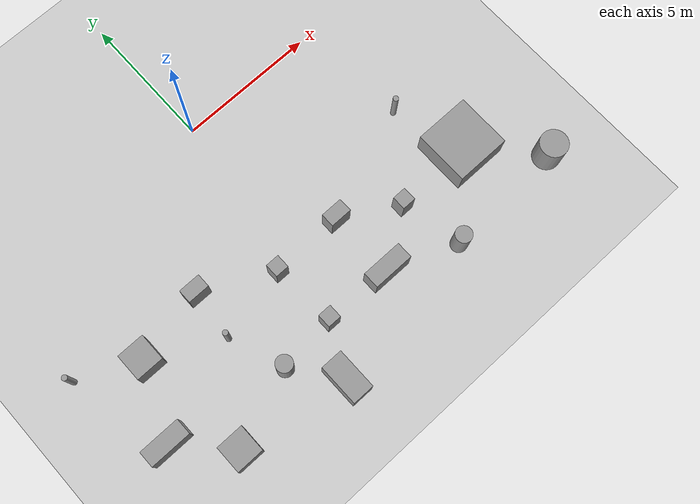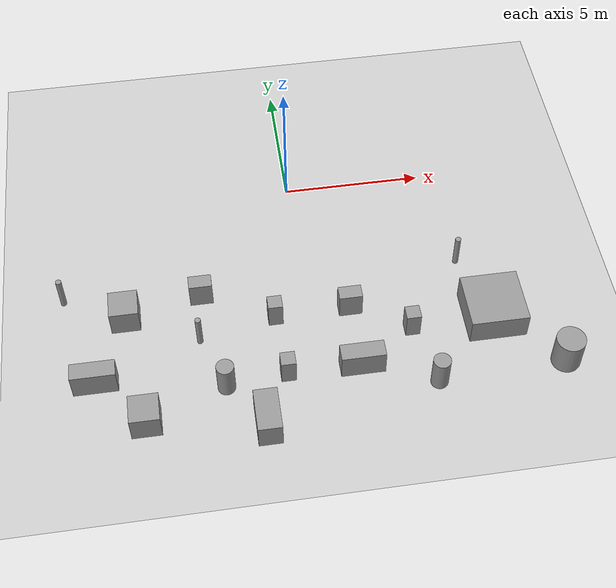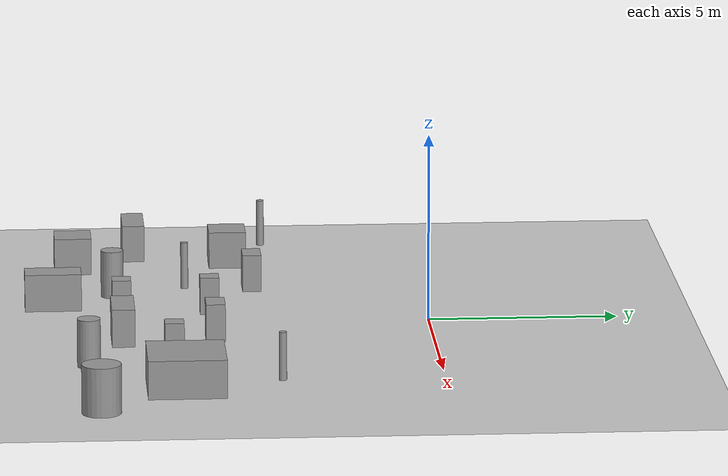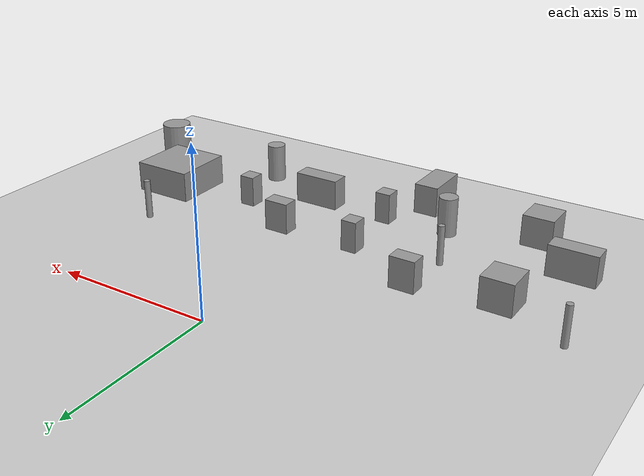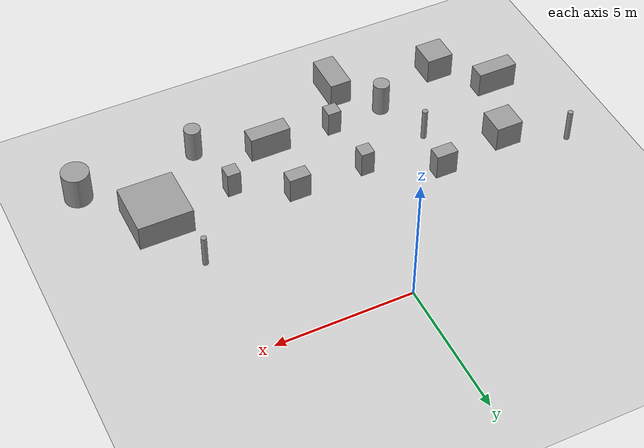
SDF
<sdf version="1.7">
 <world name="default">
  <model name="ground_plane">
   <static>1</static>
   <link name="link">
    <collision name="collision">
     <geometry><plane><normal>0 0 1</normal><size>100 100</size></plane></geometry>
     <surface>
      <contact><collide_bitmask>65535</collide_bitmask></contact>
      <friction><ode><mu>100</mu><mu2>50</mu2></ode></friction>
     </surface>
    </collision>
    <visual name="visual">
     <cast_shadows>0</cast_shadows>
     <geometry><plane><normal>0 0 1</normal><size>100 100</size></plane></geometry>
     <material>
      <script><uri>file://media/materials/scripts/gazebo.material</uri><name>Gazebo/Grey</name></script>
     </material>
    </visual>
   </link>
  </model>
  <model name="Untitled">
   <link name="link_0_clone_2_clone_0_clone_clone_0">
    <inertial>
     <mass>1</mass>
     <inertia><ixx>0.145833</ixx><ixy>0</ixy><ixz>0</ixz><iyy>0.145833</iyy><iyz>0</iyz><izz>0.125</izz></inertia>
    </inertial>
    <pose>-2.57481 -7.91493 0 0 -0 0</pose>
    <visual name="visual">
     <geometry><cylinder><radius>0.3</radius><length>1.5</length></cylinder></geometry>
     <material>
      <lighting>1</lighting>
      <script><uri>file://media/materials/scripts/gazebo.material</uri><name>Gazebo/Grey</name></script>
      <shader type="pixel"><normal_map>__default__</normal_map></shader>
      <ambient>0.3 0.3 0.3 1</ambient>
      <diffuse>0.7 0.7 0.7 1</diffuse>
      <specular>0.01 0.01 0.01 1</specular>
      <emissive>0 0 0 1</emissive>
     </material>
    </visual>
    <collision name="collision">
     <geometry><cylinder><radius>0.3</radius><length>1.5</length></cylinder></geometry>
     <surface>
      <friction>
       <ode><mu>1</mu><mu2>1</mu2><fdir1>0 0 0</fdir1><slip1>0</slip1><slip2>0</slip2></ode>
       <torsional>
        <coefficient>1</coefficient>
        <patch_radius>0</patch_radius>
        <surface_radius>0</surface_radius>
        <use_patch_radius>1</use_patch_radius>
        <ode><slip>0</slip></ode>
       </torsional>
      </friction>
      <bounce><restitution_coefficient>0</restitution_coefficient><threshold>1e+06</threshold></bounce>
      <contact>
       <collide_without_contact>0</collide_without_contact>
       <collide_without_contact_bitmask>1</collide_without_contact_bitmask>
       <collide_bitmask>1</collide_bitmask>
       <ode>
        <soft_cfm>0</soft_cfm>
        <soft_erp>0.2</soft_erp>
        <kp>1e+13</kp>
        <kd>1</kd>
        <max_vel>0.01</max_vel>
        <min_depth>0</min_depth>
       </ode>
       <bullet>
        <split_impulse>1</split_impulse>
        <split_impulse_penetration_threshold>-0.01</split_impulse_penetration_threshold>
        <soft_cfm>0</soft_cfm>
        <soft_erp>0.2</soft_erp>
        <kp>1e+13</kp>
        <kd>1</kd>
       </bullet>
      </contact>
     </surface>
    </collision>
   </link>
   <link name="link_0_clone_2_clone_0_clone_clone_3">
    <inertial>
     <mass>1</mass>
     <inertia><ixx>0.145833</ixx><ixy>0</ixy><ixz>0</ixz><iyy>0.145833</iyy><iyz>0</iyz><izz>0.125</izz></inertia>
    </inertial>
    <pose>4.47822 -8.70392 0 0 -0 0</pose>
    <visual name="visual">
     <geometry><cylinder><radius>0.3</radius><length>1.5</length></cylinder></geometry>
     <material>
      <lighting>1</lighting>
      <script><uri>file://media/materials/scripts/gazebo.material</uri><name>Gazebo/Grey</name></script>
      <shader type="pixel"><normal_map>__default__</normal_map></shader>
      <ambient>0.3 0.3 0.3 1</ambient>
      <diffuse>0.7 0.7 0.7 1</diffuse>
      <specular>0.01 0.01 0.01 1</specular>
      <emissive>0 0 0 1</emissive>
     </material>
    </visual>
    <collision name="collision">
     <geometry><cylinder><radius>0.3</radius><length>1.5</length></cylinder></geometry>
     <surface>
      <friction>
       <ode><mu>1</mu><mu2>1</mu2><fdir1>0 0 0</fdir1><slip1>0</slip1><slip2>0</slip2></ode>
       <torsional>
        <coefficient>1</coefficient>
        <patch_radius>0</patch_radius>
        <surface_radius>0</surface_radius>
        <use_patch_radius>1</use_patch_radius>
        <ode><slip>0</slip></ode>
       </torsional>
      </friction>
      <bounce><restitution_coefficient>0</restitution_coefficient><threshold>1e+06</threshold></bounce>
      <contact>
       <collide_without_contact>0</collide_without_contact>
       <collide_without_contact_bitmask>1</collide_without_contact_bitmask>
       <collide_bitmask>1</collide_bitmask>
       <ode>
        <soft_cfm>0</soft_cfm>
        <soft_erp>0.2</soft_erp>
        <kp>1e+13</kp>
        <kd>1</kd>
        <max_vel>0.01</max_vel>
        <min_depth>0</min_depth>
       </ode>
       <bullet>
        <split_impulse>1</split_impulse>
        <split_impulse_penetration_threshold>-0.01</split_impulse_penetration_threshold>
        <soft_cfm>0</soft_cfm>
        <soft_erp>0.2</soft_erp>
        <kp>1e+13</kp>
        <kd>1</kd>
       </bullet>
      </contact>
     </surface>
    </collision>
   </link>
   <link name="link_0_clone_2_clone_clone_1">
    <inertial>
     <mass>1</mass>
     <inertia><ixx>0.145833</ixx><ixy>0</ixy><ixz>0</ixz><iyy>0.145833</iyy><iyz>0</iyz><izz>0.125</izz></inertia>
    </inertial>
    <pose>-7.90099 -3.66902 0 0 -0 0</pose>
    <visual name="visual">
     <geometry><cylinder><radius>0.1</radius><length>1.5</length></cylinder></geometry>
     <material>
      <lighting>1</lighting>
      <script><uri>file://media/materials/scripts/gazebo.material</uri><name>Gazebo/Grey</name></script>
      <shader type="pixel"><normal_map>__default__</normal_map></shader>
      <ambient>0.3 0.3 0.3 1</ambient>
      <diffuse>0.7 0.7 0.7 1</diffuse>
      <specular>0.01 0.01 0.01 1</specular>
      <emissive>0 0 0 1</emissive>
     </material>
    </visual>
    <collision name="collision">
     <geometry><cylinder><radius>0.1</radius><length>1.5</length></cylinder></geometry>
     <surface>
      <friction>
       <ode><mu>1</mu><mu2>1</mu2><fdir1>0 0 0</fdir1><slip1>0</slip1><slip2>0</slip2></ode>
       <torsional>
        <coefficient>1</coefficient>
        <patch_radius>0</patch_radius>
        <surface_radius>0</surface_radius>
        <use_patch_radius>1</use_patch_radius>
        <ode><slip>0</slip></ode>
       </torsional>
      </friction>
      <bounce><restitution_coefficient>0</restitution_coefficient><threshold>1e+06</threshold></bounce>
      <contact>
       <collide_without_contact>0</collide_without_contact>
       <collide_without_contact_bitmask>1</collide_without_contact_bitmask>
       <collide_bitmask>1</collide_bitmask>
       <ode>
        <soft_cfm>0</soft_cfm>
        <soft_erp>0.2</soft_erp>
        <kp>1e+13</kp>
        <kd>1</kd>
        <max_vel>0.01</max_vel>
        <min_depth>0</min_depth>
       </ode>
       <bullet>
        <split_impulse>1</split_impulse>
        <split_impulse_penetration_threshold>-0.01</split_impulse_penetration_threshold>
        <soft_cfm>0</soft_cfm>
        <soft_erp>0.2</soft_erp>
        <kp>1e+13</kp>
        <kd>1</kd>
       </bullet>
      </contact>
     </surface>
    </collision>
   </link>
   <link name="link_0_clone_2_clone_clone_2">
    <inertial>
     <mass>1</mass>
     <inertia><ixx>0.145833</ixx><ixy>0</ixy><ixz>0</ixz><iyy>0.145833</iyy><iyz>0</iyz><izz>0.125</izz></inertia>
    </inertial>
    <pose>-3.29838 -5.94972 0 0 -0 0</pose>
    <visual name="visual">
     <geometry><cylinder><radius>0.1</radius><length>1.5</length></cylinder></geometry>
     <material>
      <lighting>1</lighting>
      <script><uri>file://media/materials/scripts/gazebo.material</uri><name>Gazebo/Grey</name></script>
      <shader type="pixel"><normal_map>__default__</normal_map></shader>
      <ambient>0.3 0.3 0.3 1</ambient>
      <diffuse>0.7 0.7 0.7 1</diffuse>
      <specular>0.01 0.01 0.01 1</specular>
      <emissive>0 0 0 1</emissive>
     </material>
    </visual>
    <collision name="collision">
     <geometry><cylinder><radius>0.1</radius><length>1.5</length></cylinder></geometry>
     <surface>
      <friction>
       <ode><mu>1</mu><mu2>1</mu2><fdir1>0 0 0</fdir1><slip1>0</slip1><slip2>0</slip2></ode>
       <torsional>
        <coefficient>1</coefficient>
        <patch_radius>0</patch_radius>
        <surface_radius>0</surface_radius>
        <use_patch_radius>1</use_patch_radius>
        <ode><slip>0</slip></ode>
       </torsional>
      </friction>
      <bounce><restitution_coefficient>0</restitution_coefficient><threshold>1e+06</threshold></bounce>
      <contact>
       <collide_without_contact>0</collide_without_contact>
       <collide_without_contact_bitmask>1</collide_without_contact_bitmask>
       <collide_bitmask>1</collide_bitmask>
       <ode>
        <soft_cfm>0</soft_cfm>
        <soft_erp>0.2</soft_erp>
        <kp>1e+13</kp>
        <kd>1</kd>
        <max_vel>0.01</max_vel>
        <min_depth>0</min_depth>
       </ode>
       <bullet>
        <split_impulse>1</split_impulse>
        <split_impulse_penetration_threshold>-0.01</split_impulse_penetration_threshold>
        <soft_cfm>0</soft_cfm>
        <soft_erp>0.2</soft_erp>
        <kp>1e+13</kp>
        <kd>1</kd>
       </bullet>
      </contact>
     </surface>
    </collision>
   </link>
   <link name="link_0_clone_2_clone_clone_3">
    <inertial>
     <mass>1</mass>
     <inertia><ixx>0.145833</ixx><ixy>0</ixy><ixz>0</ixz><iyy>0.145833</iyy><iyz>0</iyz><izz>0.125</izz></inertia>
    </inertial>
    <pose>6.09566 -3.8057 0 0 -0 0</pose>
    <visual name="visual">
     <geometry><cylinder><radius>0.1</radius><length>1.5</length></cylinder></geometry>
     <material>
      <lighting>1</lighting>
      <script><uri>file://media/materials/scripts/gazebo.material</uri><name>Gazebo/Grey</name></script>
      <shader type="pixel"><normal_map>__default__</normal_map></shader>
      <ambient>0.3 0.3 0.3 1</ambient>
      <diffuse>0.7 0.7 0.7 1</diffuse>
      <specular>0.01 0.01 0.01 1</specular>
      <emissive>0 0 0 1</emissive>
     </material>
    </visual>
    <collision name="collision">
     <geometry><cylinder><radius>0.1</radius><length>1.5</length></cylinder></geometry>
     <surface>
      <friction>
       <ode><mu>1</mu><mu2>1</mu2><fdir1>0 0 0</fdir1><slip1>0</slip1><slip2>0</slip2></ode>
       <torsional>
        <coefficient>1</coefficient>
        <patch_radius>0</patch_radius>
        <surface_radius>0</surface_radius>
        <use_patch_radius>1</use_patch_radius>
        <ode><slip>0</slip></ode>
       </torsional>
      </friction>
      <bounce><restitution_coefficient>0</restitution_coefficient><threshold>1e+06</threshold></bounce>
      <contact>
       <collide_without_contact>0</collide_without_contact>
       <collide_without_contact_bitmask>1</collide_without_contact_bitmask>
       <collide_bitmask>1</collide_bitmask>
       <ode>
        <soft_cfm>0</soft_cfm>
        <soft_erp>0.2</soft_erp>
        <kp>1e+13</kp>
        <kd>1</kd>
        <max_vel>0.01</max_vel>
        <min_depth>0</min_depth>
       </ode>
       <bullet>
        <split_impulse>1</split_impulse>
        <split_impulse_penetration_threshold>-0.01</split_impulse_penetration_threshold>
        <soft_cfm>0</soft_cfm>
        <soft_erp>0.2</soft_erp>
        <kp>1e+13</kp>
        <kd>1</kd>
       </bullet>
      </contact>
     </surface>
    </collision>
   </link>
   <link name="link_0_clone_2_clone_clone_clone_0_clone">
    <inertial>
     <mass>1</mass>
     <inertia><ixx>0.145833</ixx><ixy>0</ixy><ixz>0</ixz><iyy>0.145833</iyy><iyz>0</iyz><izz>0.125</izz></inertia>
    </inertial>
    <pose>8.8779 -8.49131 0 0 -0 0</pose>
    <visual name="visual">
     <geometry><cylinder><radius>0.5</radius><length>1.5</length></cylinder></geometry>
     <material>
      <lighting>1</lighting>
      <script><uri>file://media/materials/scripts/gazebo.material</uri><name>Gazebo/Grey</name></script>
      <shader type="pixel"><normal_map>__default__</normal_map></shader>
      <ambient>0.3 0.3 0.3 1</ambient>
      <diffuse>0.7 0.7 0.7 1</diffuse>
      <specular>0.01 0.01 0.01 1</specular>
      <emissive>0 0 0 1</emissive>
     </material>
    </visual>
    <collision name="collision">
     <geometry><cylinder><radius>0.5</radius><length>1.5</length></cylinder></geometry>
     <surface>
      <friction>
       <ode><mu>1</mu><mu2>1</mu2><fdir1>0 0 0</fdir1><slip1>0</slip1><slip2>0</slip2></ode>
       <torsional>
        <coefficient>1</coefficient>
        <patch_radius>0</patch_radius>
        <surface_radius>0</surface_radius>
        <use_patch_radius>1</use_patch_radius>
        <ode><slip>0</slip></ode>
       </torsional>
      </friction>
      <bounce><restitution_coefficient>0</restitution_coefficient><threshold>1e+06</threshold></bounce>
      <contact>
       <collide_without_contact>0</collide_without_contact>
       <collide_without_contact_bitmask>1</collide_without_contact_bitmask>
       <collide_bitmask>1</collide_bitmask>
       <ode>
        <soft_cfm>0</soft_cfm>
        <soft_erp>0.2</soft_erp>
        <kp>1e+13</kp>
        <kd>1</kd>
        <max_vel>0.01</max_vel>
        <min_depth>0</min_depth>
       </ode>
       <bullet>
        <split_impulse>1</split_impulse>
        <split_impulse_penetration_threshold>-0.01</split_impulse_penetration_threshold>
        <soft_cfm>0</soft_cfm>
        <soft_erp>0.2</soft_erp>
        <kp>1e+13</kp>
        <kd>1</kd>
       </bullet>
      </contact>
     </surface>
    </collision>
   </link>
   <link name="link_3">
    <inertial>
     <mass>1</mass>
     <inertia>
      <ixx>0.166667</ixx>
      <ixy>0</ixy>
      <ixz>0</ixz>
      <iyy>0.166667</iyy>
      <iyz>0</iyz>
      <izz>0.166667</izz>
     </inertia>
    </inertial>
    <pose>-5.77606 -4.69686 0 0 -0 0</pose>
    <visual name="visual">
     <geometry><box><size>1 1 1</size></box></geometry>
     <material>
      <lighting>1</lighting>
      <script><uri>file://media/materials/scripts/gazebo.material</uri><name>Gazebo/Grey</name></script>
      <shader type="pixel"><normal_map>__default__</normal_map></shader>
     </material>
    </visual>
    <collision name="collision">
     <geometry><box><size>1 1 1</size></box></geometry>
     <surface>
      <friction>
       <ode><mu>1</mu><mu2>1</mu2><fdir1>0 0 0</fdir1><slip1>0</slip1><slip2>0</slip2></ode>
       <torsional>
        <coefficient>1</coefficient>
        <patch_radius>0</patch_radius>
        <surface_radius>0</surface_radius>
        <use_patch_radius>1</use_patch_radius>
        <ode><slip>0</slip></ode>
       </torsional>
      </friction>
      <bounce><restitution_coefficient>0</restitution_coefficient><threshold>1e+06</threshold></bounce>
      <contact>
       <collide_without_contact>0</collide_without_contact>
       <collide_without_contact_bitmask>1</collide_without_contact_bitmask>
       <collide_bitmask>1</collide_bitmask>
       <ode>
        <soft_cfm>0</soft_cfm>
        <soft_erp>0.2</soft_erp>
        <kp>1e+13</kp>
        <kd>1</kd>
        <max_vel>0.01</max_vel>
        <min_depth>0</min_depth>
       </ode>
       <bullet>
        <split_impulse>1</split_impulse>
        <split_impulse_penetration_threshold>-0.01</split_impulse_penetration_threshold>
        <soft_cfm>0</soft_cfm>
        <soft_erp>0.2</soft_erp>
        <kp>1e+13</kp>
        <kd>1</kd>
       </bullet>
      </contact>
     </surface>
    </collision>
   </link>
   <link name="link_3_clone_0">
    <inertial>
     <mass>1</mass>
     <inertia>
      <ixx>0.166667</ixx>
      <ixy>0</ixy>
      <ixz>0</ixz>
      <iyy>0.166667</iyy>
      <iyz>0</iyz>
      <izz>0.166667</izz>
     </inertia>
    </inertial>
    <pose>-0.638617 -5.39008 0 0 -0 0</pose>
    <visual name="visual">
     <geometry><box><size>0.5 0.5 1</size></box></geometry>
     <material>
      <lighting>1</lighting>
      <script><uri>file://media/materials/scripts/gazebo.material</uri><name>Gazebo/Grey</name></script>
      <shader type="pixel"><normal_map>__default__</normal_map></shader>
      <ambient>0.3 0.3 0.3 1</ambient>
      <diffuse>0.7 0.7 0.7 1</diffuse>
      <specular>0.01 0.01 0.01 1</specular>
      <emissive>0 0 0 1</emissive>
     </material>
    </visual>
    <collision name="collision">
     <geometry><box><size>0.5 0.5 1</size></box></geometry>
     <surface>
      <friction>
       <ode><mu>1</mu><mu2>1</mu2><fdir1>0 0 0</fdir1><slip1>0</slip1><slip2>0</slip2></ode>
       <torsional>
        <coefficient>1</coefficient>
        <patch_radius>0</patch_radius>
        <surface_radius>0</surface_radius>
        <use_patch_radius>1</use_patch_radius>
        <ode><slip>0</slip></ode>
       </torsional>
      </friction>
      <bounce><restitution_coefficient>0</restitution_coefficient><threshold>1e+06</threshold></bounce>
      <contact>
       <collide_without_contact>0</collide_without_contact>
       <collide_without_contact_bitmask>1</collide_without_contact_bitmask>
       <collide_bitmask>1</collide_bitmask>
       <ode>
        <soft_cfm>0</soft_cfm>
        <soft_erp>0.2</soft_erp>
        <kp>1e+13</kp>
        <kd>1</kd>
        <max_vel>0.01</max_vel>
        <min_depth>0</min_depth>
       </ode>
       <bullet>
        <split_impulse>1</split_impulse>
        <split_impulse_penetration_threshold>-0.01</split_impulse_penetration_threshold>
        <soft_cfm>0</soft_cfm>
        <soft_erp>0.2</soft_erp>
        <kp>1e+13</kp>
        <kd>1</kd>
       </bullet>
      </contact>
     </surface>
    </collision>
   </link>
   <link name="link_3_clone_0_clone_2_clone">
    <inertial>
     <mass>1</mass>
     <inertia>
      <ixx>0.166667</ixx>
      <ixy>0</ixy>
      <ixz>0</ixz>
      <iyy>0.166667</iyy>
      <iyz>0</iyz>
      <izz>0.166667</izz>
     </inertia>
    </inertial>
    <pose>3.95671 -6.48874 0 0 -0 0</pose>
    <visual name="visual">
     <geometry><box><size>0.5 0.5 1</size></box></geometry>
     <material>
      <lighting>1</lighting>
      <script><uri>file://media/materials/scripts/gazebo.material</uri><name>Gazebo/Grey</name></script>
      <shader type="pixel"><normal_map>__default__</normal_map></shader>
      <ambient>0.3 0.3 0.3 1</ambient>
      <diffuse>0.7 0.7 0.7 1</diffuse>
      <specular>0.01 0.01 0.01 1</specular>
      <emissive>0 0 0 1</emissive>
     </material>
    </visual>
    <collision name="collision">
     <geometry><box><size>0.5 0.5 1</size></box></geometry>
     <surface>
      <friction>
       <ode><mu>1</mu><mu2>1</mu2><fdir1>0 0 0</fdir1><slip1>0</slip1><slip2>0</slip2></ode>
       <torsional>
        <coefficient>1</coefficient>
        <patch_radius>0</patch_radius>
        <surface_radius>0</surface_radius>
        <use_patch_radius>1</use_patch_radius>
        <ode><slip>0</slip></ode>
       </torsional>
      </friction>
      <bounce><restitution_coefficient>0</restitution_coefficient><threshold>1e+06</threshold></bounce>
      <contact>
       <collide_without_contact>0</collide_without_contact>
       <collide_without_contact_bitmask>1</collide_without_contact_bitmask>
       <collide_bitmask>1</collide_bitmask>
       <ode>
        <soft_cfm>0</soft_cfm>
        <soft_erp>0.2</soft_erp>
        <kp>1e+13</kp>
        <kd>1</kd>
        <max_vel>0.01</max_vel>
        <min_depth>0</min_depth>
       </ode>
       <bullet>
        <split_impulse>1</split_impulse>
        <split_impulse_penetration_threshold>-0.01</split_impulse_penetration_threshold>
        <soft_cfm>0</soft_cfm>
        <soft_erp>0.2</soft_erp>
        <kp>1e+13</kp>
        <kd>1</kd>
       </bullet>
      </contact>
     </surface>
    </collision>
   </link>
   <link name="link_3_clone_0_clone_clone">
    <inertial>
     <mass>1</mass>
     <inertia>
      <ixx>0.166667</ixx>
      <ixy>0</ixy>
      <ixz>0</ixz>
      <iyy>0.166667</iyy>
      <iyz>0</iyz>
      <izz>0.166667</izz>
     </inertia>
    </inertial>
    <pose>-0.489262 -7.72681 0 0 -0 0</pose>
    <visual name="visual">
     <geometry><box><size>0.5 0.5 1</size></box></geometry>
     <material>
      <lighting>1</lighting>
      <script><uri>file://media/materials/scripts/gazebo.material</uri><name>Gazebo/Grey</name></script>
      <shader type="pixel"><normal_map>__default__</normal_map></shader>
      <ambient>0.3 0.3 0.3 1</ambient>
      <diffuse>0.7 0.7 0.7 1</diffuse>
      <specular>0.01 0.01 0.01 1</specular>
      <emissive>0 0 0 1</emissive>
     </material>
    </visual>
    <collision name="collision">
     <geometry><box><size>0.5 0.5 1</size></box></geometry>
     <surface>
      <friction>
       <ode><mu>1</mu><mu2>1</mu2><fdir1>0 0 0</fdir1><slip1>0</slip1><slip2>0</slip2></ode>
       <torsional>
        <coefficient>1</coefficient>
        <patch_radius>0</patch_radius>
        <surface_radius>0</surface_radius>
        <use_patch_radius>1</use_patch_radius>
        <ode><slip>0</slip></ode>
       </torsional>
      </friction>
      <bounce><restitution_coefficient>0</restitution_coefficient><threshold>1e+06</threshold></bounce>
      <contact>
       <collide_without_contact>0</collide_without_contact>
       <collide_without_contact_bitmask>1</collide_without_contact_bitmask>
       <collide_bitmask>1</collide_bitmask>
       <ode>
        <soft_cfm>0</soft_cfm>
        <soft_erp>0.2</soft_erp>
        <kp>1e+13</kp>
        <kd>1</kd>
        <max_vel>0.01</max_vel>
        <min_depth>0</min_depth>
       </ode>
       <bullet>
        <split_impulse>1</split_impulse>
        <split_impulse_penetration_threshold>-0.01</split_impulse_penetration_threshold>
        <soft_cfm>0</soft_cfm>
        <soft_erp>0.2</soft_erp>
        <kp>1e+13</kp>
        <kd>1</kd>
       </bullet>
      </contact>
     </surface>
    </collision>
   </link>
   <link name="link_3_clone_1_clone_3">
    <inertial>
     <mass>1</mass>
     <inertia>
      <ixx>0.166667</ixx>
      <ixy>0</ixy>
      <ixz>0</ixz>
      <iyy>0.166667</iyy>
      <iyz>0</iyz>
      <izz>0.166667</izz>
     </inertia>
    </inertial>
    <pose>1.98133 -5.34856 0 0 -0 0</pose>
    <visual name="visual">
     <geometry><box><size>0.8 0.5 1</size></box></geometry>
     <material>
      <lighting>1</lighting>
      <script><uri>file://media/materials/scripts/gazebo.material</uri><name>Gazebo/Grey</name></script>
      <shader type="pixel"><normal_map>__default__</normal_map></shader>
      <ambient>0.3 0.3 0.3 1</ambient>
      <diffuse>0.7 0.7 0.7 1</diffuse>
      <specular>0.01 0.01 0.01 1</specular>
      <emissive>0 0 0 1</emissive>
     </material>
    </visual>
    <collision name="collision">
     <geometry><box><size>0.8 0.5 1</size></box></geometry>
     <surface>
      <friction>
       <ode><mu>1</mu><mu2>1</mu2><fdir1>0 0 0</fdir1><slip1>0</slip1><slip2>0</slip2></ode>
       <torsional>
        <coefficient>1</coefficient>
        <patch_radius>0</patch_radius>
        <surface_radius>0</surface_radius>
        <use_patch_radius>1</use_patch_radius>
        <ode><slip>0</slip></ode>
       </torsional>
      </friction>
      <bounce><restitution_coefficient>0</restitution_coefficient><threshold>1e+06</threshold></bounce>
      <contact>
       <collide_without_contact>0</collide_without_contact>
       <collide_without_contact_bitmask>1</collide_without_contact_bitmask>
       <collide_bitmask>1</collide_bitmask>
       <ode>
        <soft_cfm>0</soft_cfm>
        <soft_erp>0.2</soft_erp>
        <kp>1e+13</kp>
        <kd>1</kd>
        <max_vel>0.01</max_vel>
        <min_depth>0</min_depth>
       </ode>
       <bullet>
        <split_impulse>1</split_impulse>
        <split_impulse_penetration_threshold>-0.01</split_impulse_penetration_threshold>
        <soft_cfm>0</soft_cfm>
        <soft_erp>0.2</soft_erp>
        <kp>1e+13</kp>
        <kd>1</kd>
       </bullet>
      </contact>
     </surface>
    </collision>
   </link>
   <link name="link_3_clone_1_clone_4">
    <inertial>
     <mass>1</mass>
     <inertia>
      <ixx>0.166667</ixx>
      <ixy>0</ixy>
      <ixz>0</ixz>
      <iyy>0.166667</iyy>
      <iyz>0</iyz>
      <izz>0.166667</izz>
     </inertia>
    </inertial>
    <pose>-3.10126 -4.1524 0 0 -0 0</pose>
    <visual name="visual">
     <geometry><box><size>0.8 0.5 1</size></box></geometry>
     <material>
      <lighting>1</lighting>
      <script><uri>file://media/materials/scripts/gazebo.material</uri><name>Gazebo/Grey</name></script>
      <shader type="pixel"><normal_map>__default__</normal_map></shader>
      <ambient>0.3 0.3 0.3 1</ambient>
      <diffuse>0.7 0.7 0.7 1</diffuse>
      <specular>0.01 0.01 0.01 1</specular>
      <emissive>0 0 0 1</emissive>
     </material>
    </visual>
    <collision name="collision">
     <geometry><box><size>0.8 0.5 1</size></box></geometry>
     <surface>
      <friction>
       <ode><mu>1</mu><mu2>1</mu2><fdir1>0 0 0</fdir1><slip1>0</slip1><slip2>0</slip2></ode>
       <torsional>
        <coefficient>1</coefficient>
        <patch_radius>0</patch_radius>
        <surface_radius>0</surface_radius>
        <use_patch_radius>1</use_patch_radius>
        <ode><slip>0</slip></ode>
       </torsional>
      </friction>
      <bounce><restitution_coefficient>0</restitution_coefficient><threshold>1e+06</threshold></bounce>
      <contact>
       <collide_without_contact>0</collide_without_contact>
       <collide_without_contact_bitmask>1</collide_without_contact_bitmask>
       <collide_bitmask>1</collide_bitmask>
       <ode>
        <soft_cfm>0</soft_cfm>
        <soft_erp>0.2</soft_erp>
        <kp>1e+13</kp>
        <kd>1</kd>
        <max_vel>0.01</max_vel>
        <min_depth>0</min_depth>
       </ode>
       <bullet>
        <split_impulse>1</split_impulse>
        <split_impulse_penetration_threshold>-0.01</split_impulse_penetration_threshold>
        <soft_cfm>0</soft_cfm>
        <soft_erp>0.2</soft_erp>
        <kp>1e+13</kp>
        <kd>1</kd>
       </bullet>
      </contact>
     </surface>
    </collision>
   </link>
   <link name="link_3_clone_2_clone">
    <inertial>
     <mass>1</mass>
     <inertia>
      <ixx>0.166667</ixx>
      <ixy>0</ixy>
      <ixz>0</ixz>
      <iyy>0.166667</iyy>
      <iyz>0</iyz>
      <izz>0.166667</izz>
     </inertia>
    </inertial>
    <pose>6.835 -6.29525 0 0 -0 0</pose>
    <visual name="visual">
     <geometry><box><size>2 2 1</size></box></geometry>
     <material>
      <lighting>1</lighting>
      <script><uri>file://media/materials/scripts/gazebo.material</uri><name>Gazebo/Grey</name></script>
      <shader type="pixel"><normal_map>__default__</normal_map></shader>
      <ambient>0.3 0.3 0.3 1</ambient>
      <diffuse>0.7 0.7 0.7 1</diffuse>
      <specular>0.01 0.01 0.01 1</specular>
      <emissive>0 0 0 1</emissive>
     </material>
    </visual>
    <collision name="collision">
     <geometry><box><size>2 2 1</size></box></geometry>
     <surface>
      <friction>
       <ode><mu>1</mu><mu2>1</mu2><fdir1>0 0 0</fdir1><slip1>0</slip1><slip2>0</slip2></ode>
       <torsional>
        <coefficient>1</coefficient>
        <patch_radius>0</patch_radius>
        <surface_radius>0</surface_radius>
        <use_patch_radius>1</use_patch_radius>
        <ode><slip>0</slip></ode>
       </torsional>
      </friction>
      <bounce><restitution_coefficient>0</restitution_coefficient><threshold>1e+06</threshold></bounce>
      <contact>
       <collide_without_contact>0</collide_without_contact>
       <collide_without_contact_bitmask>1</collide_without_contact_bitmask>
       <collide_bitmask>1</collide_bitmask>
       <ode>
        <soft_cfm>0</soft_cfm>
        <soft_erp>0.2</soft_erp>
        <kp>1e+13</kp>
        <kd>1</kd>
        <max_vel>0.01</max_vel>
        <min_depth>0</min_depth>
       </ode>
       <bullet>
        <split_impulse>1</split_impulse>
        <split_impulse_penetration_threshold>-0.01</split_impulse_penetration_threshold>
        <soft_cfm>0</soft_cfm>
        <soft_erp>0.2</soft_erp>
        <kp>1e+13</kp>
        <kd>1</kd>
       </bullet>
      </contact>
     </surface>
    </collision>
   </link>
   <link name="link_3_clone_3">
    <inertial>
     <mass>1</mass>
     <inertia>
      <ixx>0.166667</ixx>
      <ixy>0</ixy>
      <ixz>0</ixz>
      <iyy>0.166667</iyy>
      <iyz>0</iyz>
      <izz>0.166667</izz>
     </inertia>
    </inertial>
    <pose>-5.2976 -8.91934 0 0 -0 0</pose>
    <visual name="visual">
     <geometry><box><size>1 1 1</size></box></geometry>
     <material>
      <lighting>1</lighting>
      <script><uri>file://media/materials/scripts/gazebo.material</uri><name>Gazebo/Grey</name></script>
      <shader type="pixel"><normal_map>__default__</normal_map></shader>
     </material>
    </visual>
    <collision name="collision">
     <geometry><box><size>1 1 1</size></box></geometry>
     <surface>
      <friction>
       <ode><mu>1</mu><mu2>1</mu2><fdir1>0 0 0</fdir1><slip1>0</slip1><slip2>0</slip2></ode>
       <torsional>
        <coefficient>1</coefficient>
        <patch_radius>0</patch_radius>
        <surface_radius>0</surface_radius>
        <use_patch_radius>1</use_patch_radius>
        <ode><slip>0</slip></ode>
       </torsional>
      </friction>
      <bounce><restitution_coefficient>0</restitution_coefficient><threshold>1e+06</threshold></bounce>
      <contact>
       <collide_without_contact>0</collide_without_contact>
       <collide_without_contact_bitmask>1</collide_without_contact_bitmask>
       <collide_bitmask>1</collide_bitmask>
       <ode>
        <soft_cfm>0</soft_cfm>
        <soft_erp>0.2</soft_erp>
        <kp>1e+13</kp>
        <kd>1</kd>
        <max_vel>0.01</max_vel>
        <min_depth>0</min_depth>
       </ode>
       <bullet>
        <split_impulse>1</split_impulse>
        <split_impulse_penetration_threshold>-0.01</split_impulse_penetration_threshold>
        <soft_cfm>0</soft_cfm>
        <soft_erp>0.2</soft_erp>
        <kp>1e+13</kp>
        <kd>1</kd>
       </bullet>
      </contact>
     </surface>
    </collision>
   </link>
   <link name="link_3_clone_clone_0">
    <inertial>
     <mass>1</mass>
     <inertia>
      <ixx>0.166667</ixx>
      <ixy>0</ixy>
      <ixz>0</ixz>
      <iyy>0.166667</iyy>
      <iyz>0</iyz>
      <izz>0.166667</izz>
     </inertia>
    </inertial>
    <pose>-1.37319 -9.52169 0 0 -0 0</pose>
    <visual name="visual">
     <geometry><box><size>0.8 1.5 1</size></box></geometry>
     <material>
      <lighting>1</lighting>
      <script><uri>file://media/materials/scripts/gazebo.material</uri><name>Gazebo/Grey</name></script>
      <shader type="pixel"><normal_map>__default__</normal_map></shader>
      <ambient>0.3 0.3 0.3 1</ambient>
      <diffuse>0.7 0.7 0.7 1</diffuse>
      <specular>0.01 0.01 0.01 1</specular>
      <emissive>0 0 0 1</emissive>
     </material>
    </visual>
    <collision name="collision">
     <geometry><box><size>0.8 1.5 1</size></box></geometry>
     <surface>
      <friction>
       <ode><mu>1</mu><mu2>1</mu2><fdir1>0 0 0</fdir1><slip1>0</slip1><slip2>0</slip2></ode>
       <torsional>
        <coefficient>1</coefficient>
        <patch_radius>0</patch_radius>
        <surface_radius>0</surface_radius>
        <use_patch_radius>1</use_patch_radius>
        <ode><slip>0</slip></ode>
       </torsional>
      </friction>
      <bounce><restitution_coefficient>0</restitution_coefficient><threshold>1e+06</threshold></bounce>
      <contact>
       <collide_without_contact>0</collide_without_contact>
       <collide_without_contact_bitmask>1</collide_without_contact_bitmask>
       <collide_bitmask>1</collide_bitmask>
       <ode>
        <soft_cfm>0</soft_cfm>
        <soft_erp>0.2</soft_erp>
        <kp>1e+13</kp>
        <kd>1</kd>
        <max_vel>0.01</max_vel>
        <min_depth>0</min_depth>
       </ode>
       <bullet>
        <split_impulse>1</split_impulse>
        <split_impulse_penetration_threshold>-0.01</split_impulse_penetration_threshold>
        <soft_cfm>0</soft_cfm>
        <soft_erp>0.2</soft_erp>
        <kp>1e+13</kp>
        <kd>1</kd>
       </bullet>
      </contact>
     </surface>
    </collision>
   </link>
   <link name="link_3_clone_clone_clone">
    <inertial>
     <mass>1</mass>
     <inertia>
      <ixx>0.166667</ixx>
      <ixy>0</ixy>
      <ixz>0</ixz>
      <iyy>0.166667</iyy>
      <iyz>0</iyz>
      <izz>0.166667</izz>
     </inertia>
    </inertial>
    <pose>-6.88463 -7.23702 0 0 -0 0</pose>
    <visual name="visual">
     <geometry><box><size>1.5 0.6 1</size></box></geometry>
     <material>
      <lighting>1</lighting>
      <script><uri>file://media/materials/scripts/gazebo.material</uri><name>Gazebo/Grey</name></script>
      <shader type="pixel"><normal_map>__default__</normal_map></shader>
      <ambient>0.3 0.3 0.3 1</ambient>
      <diffuse>0.7 0.7 0.7 1</diffuse>
      <specular>0.01 0.01 0.01 1</specular>
      <emissive>0 0 0 1</emissive>
     </material>
    </visual>
    <collision name="collision">
     <geometry><box><size>1.5 0.6 1</size></box></geometry>
     <surface>
      <friction>
       <ode><mu>1</mu><mu2>1</mu2><fdir1>0 0 0</fdir1><slip1>0</slip1><slip2>0</slip2></ode>
       <torsional>
        <coefficient>1</coefficient>
        <patch_radius>0</patch_radius>
        <surface_radius>0</surface_radius>
        <use_patch_radius>1</use_patch_radius>
        <ode><slip>0</slip></ode>
       </torsional>
      </friction>
      <bounce><restitution_coefficient>0</restitution_coefficient><threshold>1e+06</threshold></bounce>
      <contact>
       <collide_without_contact>0</collide_without_contact>
       <collide_without_contact_bitmask>1</collide_without_contact_bitmask>
       <collide_bitmask>1</collide_bitmask>
       <ode>
        <soft_cfm>0</soft_cfm>
        <soft_erp>0.2</soft_erp>
        <kp>1e+13</kp>
        <kd>1</kd>
        <max_vel>0.01</max_vel>
        <min_depth>0</min_depth>
       </ode>
       <bullet>
        <split_impulse>1</split_impulse>
        <split_impulse_penetration_threshold>-0.01</split_impulse_penetration_threshold>
        <soft_cfm>0</soft_cfm>
        <soft_erp>0.2</soft_erp>
        <kp>1e+13</kp>
        <kd>1</kd>
       </bullet>
      </contact>
     </surface>
    </collision>
   </link>
   <link name="link_3_clone_clone_clone_1">
    <inertial>
     <mass>1</mass>
     <inertia>
      <ixx>0.166667</ixx>
      <ixy>0</ixy>
      <ixz>0</ixz>
      <iyy>0.166667</iyy>
      <iyz>0</iyz>
      <izz>0.166667</izz>
     </inertia>
    </inertial>
    <pose>2.01667 -7.76394 0 0 -0 0</pose>
    <visual name="visual">
     <geometry><box><size>1.5 0.6 1</size></box></geometry>
     <material>
      <lighting>1</lighting>
      <script><uri>file://media/materials/scripts/gazebo.material</uri><name>Gazebo/Grey</name></script>
      <shader type="pixel"><normal_map>__default__</normal_map></shader>
      <ambient>0.3 0.3 0.3 1</ambient>
      <diffuse>0.7 0.7 0.7 1</diffuse>
      <specular>0.01 0.01 0.01 1</specular>
      <emissive>0 0 0 1</emissive>
     </material>
    </visual>
    <collision name="collision">
     <geometry><box><size>1.5 0.6 1</size></box></geometry>
     <surface>
      <friction>
       <ode><mu>1</mu><mu2>1</mu2><fdir1>0 0 0</fdir1><slip1>0</slip1><slip2>0</slip2></ode>
       <torsional>
        <coefficient>1</coefficient>
        <patch_radius>0</patch_radius>
        <surface_radius>0</surface_radius>
        <use_patch_radius>1</use_patch_radius>
        <ode><slip>0</slip></ode>
       </torsional>
      </friction>
      <bounce><restitution_coefficient>0</restitution_coefficient><threshold>1e+06</threshold></bounce>
      <contact>
       <collide_without_contact>0</collide_without_contact>
       <collide_without_contact_bitmask>1</collide_without_contact_bitmask>
       <collide_bitmask>1</collide_bitmask>
       <ode>
        <soft_cfm>0</soft_cfm>
        <soft_erp>0.2</soft_erp>
        <kp>1e+13</kp>
        <kd>1</kd>
        <max_vel>0.01</max_vel>
        <min_depth>0</min_depth>
       </ode>
       <bullet>
        <split_impulse>1</split_impulse>
        <split_impulse_penetration_threshold>-0.01</split_impulse_penetration_threshold>
        <soft_cfm>0</soft_cfm>
        <soft_erp>0.2</soft_erp>
        <kp>1e+13</kp>
        <kd>1</kd>
       </bullet>
      </contact>
     </surface>
    </collision>
   </link>
   <static>0</static>
   <pose>-0.488633 -0.355409 0.5 0 -0 0</pose>
  </model>
 </world>
</sdf>
